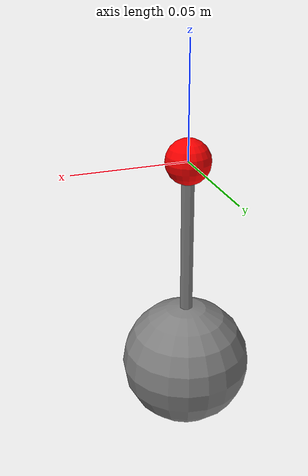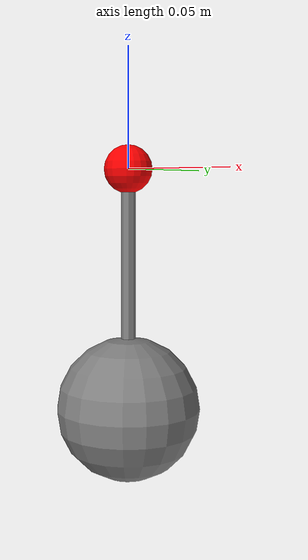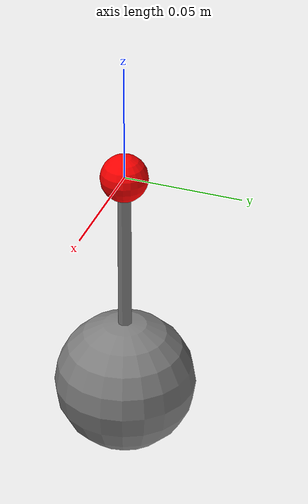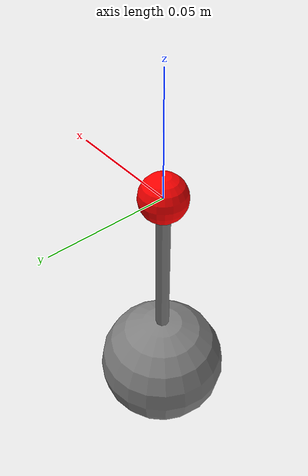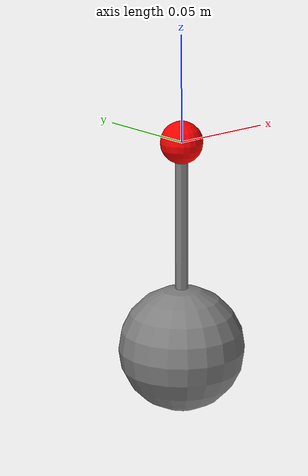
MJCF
<mujoco model="tendon_stretch_test">
  <option gravity="0 0 -9.81" timestep="0.002"/>

  <worldbody>
    <!-- Fixed anchor -->
    <body name="anchor" pos="0 0 0">
      <geom type="sphere" size="0.01" rgba="1 0 0 1"/>
      <site name="anchor_site" pos="0 0 0" size="0.005" />
    </body>

    <!-- 1 kg mass hanging below -->
    <body name="weight" pos="0 0 -0.1">
      <joint name="free" type="free"/>
      <geom type="sphere" size="0.03" mass="1"/>
      <site name="mass_site" pos="0 0 0" size="0.005" />
    </body>
  </worldbody>

  <tendon>
    <spatial name="spring_tendon" stiffness="2000" springlength="0.1">
      <site site="anchor_site"/>
      <site site="mass_site"/>
    </spatial>
  </tendon>

  <actuator>
    <muscle name="muscle_force" tendon="spring_tendon" ctrlrange="0 1" force="5000"/>
  </actuator>
</mujoco>
